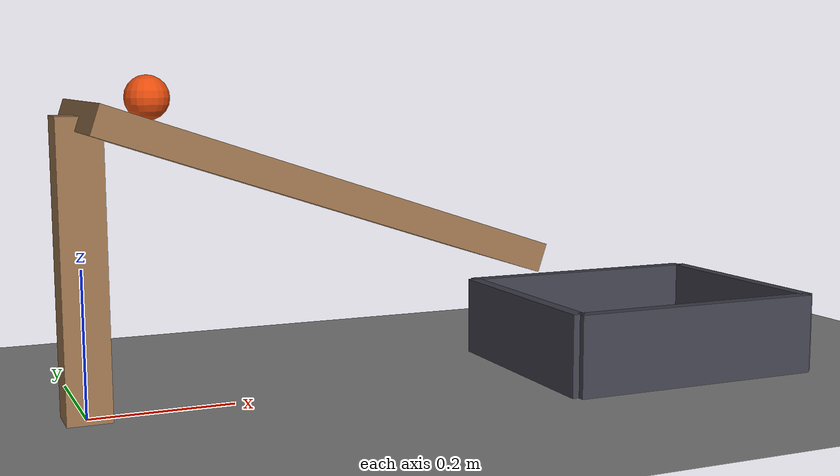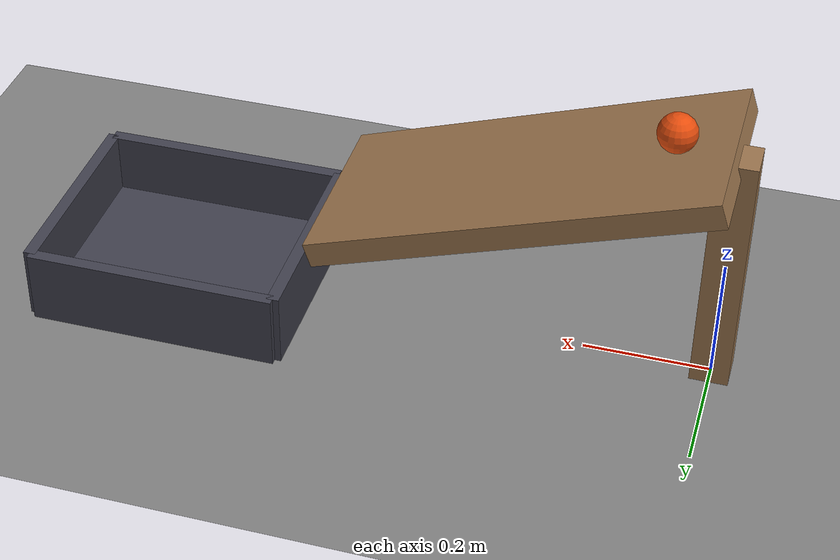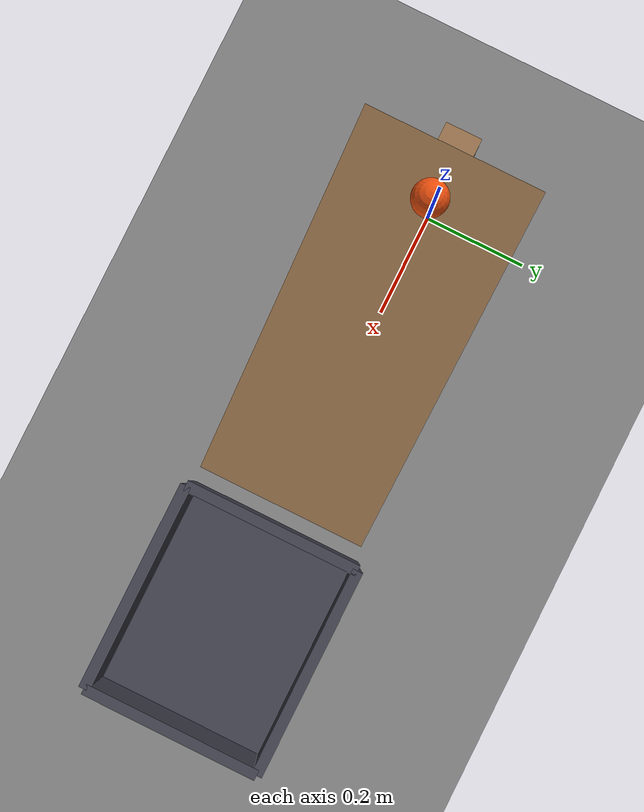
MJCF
<mujoco model="ball_rolls_down_a_ramp_into_a_cup">
  <compiler angle="radian"/>
  <option timestep="0.002"/>
  <worldbody>
    <geom name="floor" type="plane" size="6 6 0.1" friction="0.8 0.005 0.002"/>
    <body name="ramp">
      <geom name="ramp_deck" type="box" pos="0.3 0 0.3" size="0.316228 0.15 0.02" euler="0 0.321751 0" friction="0.9 0.005 0.002" rgba="0.6 0.45 0.3 1"/>
      <geom name="ramp_leg" type="box" pos="0 0 0.2" size="0.03 0.03 0.2" friction="0.9 0.005 0.002" rgba="0.6 0.45 0.3 1"/>
    </body>
    <body name="cup">
      <geom name="cup_base" type="box" pos="0.85 0 0.01" size="0.2 0.17 0.01" friction="0.9 0.01 0.01" solref="0.01 1" rgba="0.25 0.25 0.3 1"/>
      <geom name="cup_near_wall" type="box" pos="0.65 0 0.06" size="0.01 0.17 0.06" friction="0.9 0.01 0.01" solref="0.01 1" rgba="0.25 0.25 0.3 1"/>
      <geom name="cup_far_wall" type="box" pos="1.05 0 0.06" size="0.01 0.17 0.06" friction="0.9 0.01 0.01" solref="0.01 1" rgba="0.25 0.25 0.3 1"/>
      <geom name="cup_left_wall" type="box" pos="0.85 0.17 0.06" size="0.2 0.01 0.06" friction="0.9 0.01 0.01" solref="0.01 1" rgba="0.25 0.25 0.3 1"/>
      <geom name="cup_right_wall" type="box" pos="0.85 -0.17 0.06" size="0.2 0.01 0.06" friction="0.9 0.01 0.01" solref="0.01 1" rgba="0.25 0.25 0.3 1"/>
    </body>
    <body name="ball" pos="0.0917061 0 0.422136">
      <freejoint/>
      <geom name="ball" type="sphere" pos="0 0 0" size="0.03" mass="0.1" condim="6" friction="0.9 0.01 0.004" solref="0.01 1" rgba="0.9 0.3 0.05 1"/>
    </body>
  </worldbody>
  <keyframe>
    <key name="start" qpos="0.0917061 0 0.422136 1 0 0 0" qvel="0 0 0 0 0 0"/>
  </keyframe>
</mujoco>
